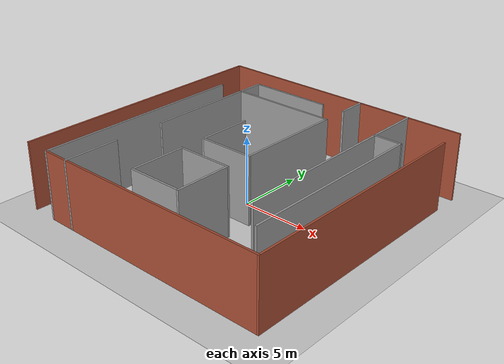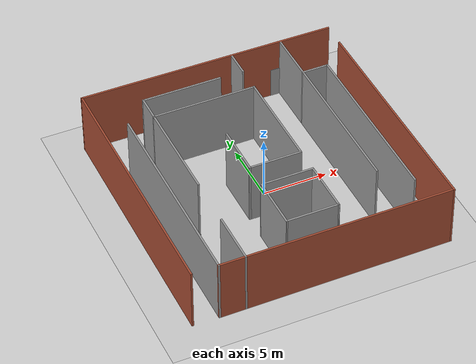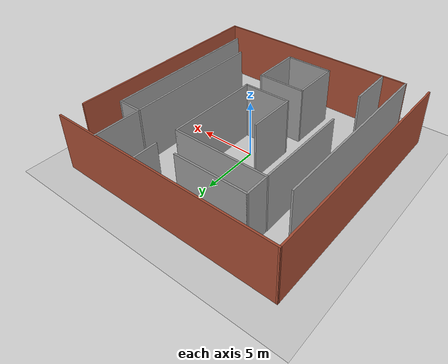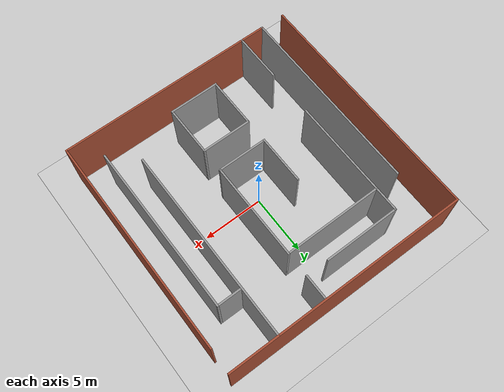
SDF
<sdf version="1.6">
 <world name="default">
  <light name="sun" type="directional">
   <pose>0 0 10 0 -0 0</pose>
   <diffuse>0.8 0.8 0.8 1</diffuse>
   <specular>0.2 0.2 0.2 1</specular>
   <attenuation>
    <range>1000</range>
    <constant>0.9</constant>
    <linear>0.01</linear>
    <quadratic>0.001</quadratic>
   </attenuation>
   <direction>-0.5 0.1 -0.9</direction>
  </light>
  <model name="ground_plane">
   <static>1</static>
   <link name="link">
    <collision name="collision">
     <geometry><plane><normal>0 0 1</normal><size>100 100</size></plane></geometry>
     <surface><friction><ode><mu>100</mu><mu2>50</mu2></ode></friction></surface>
    </collision>
    <visual name="visual">
     <cast_shadows>0</cast_shadows>
     <geometry><plane><normal>0 0 1</normal><size>100 100</size></plane></geometry>
     <material>
      <script><uri>file://media/materials/scripts/gazebo.material</uri><name>Gazebo/Grey</name></script>
     </material>
    </visual>
   </link>
  </model>
  <gravity>0 0 -9.8</gravity>
  <magnetic_field>6e-06 2.3e-05 -4.2e-05</magnetic_field>
  <atmosphere type="adiabatic"/>
  <physics name="default_physics" default="0" type="ode">
   <max_step_size>0.001</max_step_size>
   <real_time_factor>1</real_time_factor>
   <real_time_update_rate>1000</real_time_update_rate>
  </physics>
  <scene><ambient>0.4 0.4 0.4 1</ambient><background>0.7 0.7 0.7 1</background><shadows>1</shadows></scene>
  <spherical_coordinates>
   <surface_model>EARTH_WGS84</surface_model>
   <latitude_deg>0</latitude_deg>
   <longitude_deg>0</longitude_deg>
   <elevation>0</elevation>
   <heading_deg>0</heading_deg>
  </spherical_coordinates>
  <model name="maze_easy">
   <pose>-0.01732 0.00417 0 0 -0 0</pose>
   <link name="Wall_0">
    <collision name="Wall_0_Collision">
     <geometry><box><size>20.1504 0.15 5</size></box></geometry>
     <pose>0 0 2.5 0 -0 0</pose>
    </collision>
    <visual name="Wall_0_Visual">
     <pose>0 0 2.5 0 -0 0</pose>
     <geometry><box><size>20.1504 0.15 5</size></box></geometry>
     <material>
      <script><uri>file://media/materials/scripts/gazebo.material</uri><name>Gazebo/Bricks</name></script>
      <ambient>0.996078 0.47451 0.0196078 1</ambient>
     </material>
     <meta><layer>0</layer></meta>
    </visual>
    <pose>0.008803 9.99977 0 0 -0 -0.00615</pose>
   </link>
   <link name="Wall_11">
    <collision name="Wall_11_Collision">
     <geometry><box><size>16.15 0.15 5</size></box></geometry>
     <pose>0 0 2.5 0 -0 0</pose>
    </collision>
    <visual name="Wall_11_Visual">
     <pose>0 0 2.5 0 -0 0</pose>
     <geometry><box><size>16.15 0.15 5</size></box></geometry>
     <material>
      <script><uri>file://media/materials/scripts/gazebo.material</uri><name>Gazebo/Grey</name></script>
      <ambient>1 1 1 1</ambient>
     </material>
     <meta><layer>0</layer></meta>
    </visual>
    <pose>-8.0092 -2.06173 0 0 -0 1.5708</pose>
   </link>
   <link name="Wall_13">
    <collision name="Wall_13_Collision">
     <geometry><box><size>10.15 0.15 5</size></box></geometry>
     <pose>0 0 2.5 0 -0 0</pose>
    </collision>
    <visual name="Wall_13_Visual">
     <pose>0 0 2.5 0 -0 0</pose>
     <geometry><box><size>10.15 0.15 5</size></box></geometry>
     <material>
      <script><uri>file://media/materials/scripts/gazebo.material</uri><name>Gazebo/Grey</name></script>
      <ambient>1 1 1 1</ambient>
     </material>
     <meta><layer>0</layer></meta>
    </visual>
    <pose>-6.0092 2.93827 0 0 -0 -1.5708</pose>
   </link>
   <link name="Wall_15">
    <collision name="Wall_15_Collision">
     <geometry><box><size>6.27446 0.15 5</size></box></geometry>
     <pose>0 0 2.5 0 -0 0</pose>
    </collision>
    <visual name="Wall_15_Visual">
     <pose>0 0 2.5 0 -0 0</pose>
     <geometry><box><size>6.27446 0.15 5</size></box></geometry>
     <material>
      <script><uri>file://media/materials/scripts/gazebo.material</uri><name>Gazebo/Grey</name></script>
      <ambient>1 1 1 1</ambient>
     </material>
     <meta><layer>0</layer></meta>
    </visual>
    <pose>-2.9472 7.93827 0 0 -0 0</pose>
   </link>
   <link name="Wall_17">
    <collision name="Wall_17_Collision">
     <geometry><box><size>8.15 0.15 5</size></box></geometry>
     <pose>0 0 2.5 0 -0 0</pose>
    </collision>
    <visual name="Wall_17_Visual">
     <pose>0 0 2.5 0 -0 0</pose>
     <geometry><box><size>8.15 0.15 5</size></box></geometry>
     <material>
      <script><uri>file://media/materials/scripts/gazebo.material</uri><name>Gazebo/Grey</name></script>
      <ambient>1 1 1 1</ambient>
     </material>
     <meta><layer>0</layer></meta>
    </visual>
    <pose>-2.0092 5.93827 0 0 -0 0</pose>
   </link>
   <link name="Wall_19">
    <collision name="Wall_19_Collision">
     <geometry><box><size>2.15 0.15 5</size></box></geometry>
     <pose>0 0 2.5 0 -0 0</pose>
    </collision>
    <visual name="Wall_19_Visual">
     <pose>0 0 2.5 0 -0 0</pose>
     <geometry><box><size>2.15 0.15 5</size></box></geometry>
     <material>
      <script><uri>file://media/materials/scripts/gazebo.material</uri><name>Gazebo/Grey</name></script>
      <ambient>1 1 1 1</ambient>
     </material>
     <meta><layer>0</layer></meta>
    </visual>
    <pose>1.9908 8.93827 0 0 -0 -1.5708</pose>
   </link>
   <link name="Wall_2">
    <collision name="Wall_2_Collision">
     <geometry><box><size>20.2115 0.15 5</size></box></geometry>
     <pose>0 0 2.5 0 -0 0</pose>
    </collision>
    <visual name="Wall_2_Visual">
     <pose>0 0 2.5 0 -0 0</pose>
     <geometry><box><size>20.2115 0.15 5</size></box></geometry>
     <material>
      <script><uri>file://media/materials/scripts/gazebo.material</uri><name>Gazebo/Bricks</name></script>
      <ambient>0.921569 0.807843 0.615686 1</ambient>
     </material>
     <meta><layer>0</layer></meta>
    </visual>
    <pose>-10.0002 0.03077 0 0 -0 -1.57169</pose>
   </link>
   <link name="Wall_21">
    <collision name="Wall_21_Collision">
     <geometry><box><size>8.096 0.15 5</size></box></geometry>
     <pose>0 0 2.5 0 -0 0</pose>
    </collision>
    <visual name="Wall_21_Visual">
     <pose>0 0 2.5 0 -0 0</pose>
     <geometry><box><size>8.096 0.15 5</size></box></geometry>
     <material>
      <script><uri>file://media/materials/scripts/gazebo.material</uri><name>Gazebo/Grey</name></script>
      <ambient>1 1 1 1</ambient>
     </material>
     <meta><layer>0</layer></meta>
    </visual>
    <pose>1.9908 1.96527 0 0 -0 -1.5708</pose>
   </link>
   <link name="Wall_22">
    <collision name="Wall_22_Collision">
     <geometry><box><size>4.15 0.15 5</size></box></geometry>
     <pose>0 0 2.5 0 -0 0</pose>
    </collision>
    <visual name="Wall_22_Visual">
     <pose>0 0 2.5 0 -0 0</pose>
     <geometry><box><size>4.15 0.15 5</size></box></geometry>
     <material>
      <script><uri>file://media/materials/scripts/gazebo.material</uri><name>Gazebo/Grey</name></script>
      <ambient>1 1 1 1</ambient>
     </material>
     <meta><layer>0</layer></meta>
    </visual>
    <pose>-0.009197 -2.00773 0 0 -0 3.14159</pose>
   </link>
   <link name="Wall_23">
    <collision name="Wall_23_Collision">
     <geometry><box><size>4.096 0.15 5</size></box></geometry>
     <pose>0 0 2.5 0 -0 0</pose>
    </collision>
    <visual name="Wall_23_Visual">
     <pose>0 0 2.5 0 -0 0</pose>
     <geometry><box><size>4.096 0.15 5</size></box></geometry>
     <material>
      <script><uri>file://media/materials/scripts/gazebo.material</uri><name>Gazebo/Grey</name></script>
      <ambient>1 1 1 1</ambient>
     </material>
     <meta><layer>0</layer></meta>
    </visual>
    <pose>-2.0092 -0.034729 0 0 -0 1.5708</pose>
   </link>
   <link name="Wall_25">
    <collision name="Wall_25_Collision">
     <geometry><box><size>4.258 0.15 5</size></box></geometry>
     <pose>0 0 2.5 0 -0 0</pose>
    </collision>
    <visual name="Wall_25_Visual">
     <pose>0 0 2.5 0 -0 0</pose>
     <geometry><box><size>4.258 0.15 5</size></box></geometry>
     <material>
      <script><uri>file://media/materials/scripts/gazebo.material</uri><name>Gazebo/Grey</name></script>
      <ambient>1 1 1 1</ambient>
     </material>
     <meta><layer>0</layer></meta>
    </visual>
    <pose>-2.0092 -6.00773 0 0 -0 -1.5708</pose>
   </link>
   <link name="Wall_26">
    <collision name="Wall_26_Collision">
     <geometry><box><size>4.15 0.15 5</size></box></geometry>
     <pose>0 0 2.5 0 -0 0</pose>
    </collision>
    <visual name="Wall_26_Visual">
     <pose>0 0 2.5 0 -0 0</pose>
     <geometry><box><size>4.15 0.15 5</size></box></geometry>
     <material>
      <script><uri>file://media/materials/scripts/gazebo.material</uri><name>Gazebo/Grey</name></script>
      <ambient>1 1 1 1</ambient>
     </material>
     <meta><layer>0</layer></meta>
    </visual>
    <pose>-0.009197 -8.06173 0 0 -0 0</pose>
   </link>
   <link name="Wall_27">
    <collision name="Wall_27_Collision">
     <geometry><box><size>4.258 0.15 5</size></box></geometry>
     <pose>0 0 2.5 0 -0 0</pose>
    </collision>
    <visual name="Wall_27_Visual">
     <pose>0 0 2.5 0 -0 0</pose>
     <geometry><box><size>4.258 0.15 5</size></box></geometry>
     <material>
      <script><uri>file://media/materials/scripts/gazebo.material</uri><name>Gazebo/Grey</name></script>
      <ambient>1 1 1 1</ambient>
     </material>
     <meta><layer>0</layer></meta>
    </visual>
    <pose>1.9908 -6.00773 0 0 -0 1.5708</pose>
   </link>
   <link name="Wall_28">
    <collision name="Wall_28_Collision">
     <geometry><box><size>4.15 0.15 5</size></box></geometry>
     <pose>0 0 2.5 0 -0 0</pose>
    </collision>
    <visual name="Wall_28_Visual">
     <pose>0 0 2.5 0 -0 0</pose>
     <geometry><box><size>4.15 0.15 5</size></box></geometry>
     <material>
      <script><uri>file://media/materials/scripts/gazebo.material</uri><name>Gazebo/Grey</name></script>
      <ambient>1 1 1 1</ambient>
     </material>
     <meta><layer>0</layer></meta>
    </visual>
    <pose>-0.009197 -3.95373 0 0 -0 3.14159</pose>
   </link>
   <link name="Wall_30">
    <collision name="Wall_30_Collision">
     <geometry><box><size>4.15 0.15 5</size></box></geometry>
     <pose>0 0 2.5 0 -0 0</pose>
    </collision>
    <visual name="Wall_30_Visual">
     <pose>0 0 2.5 0 -0 0</pose>
     <geometry><box><size>4.15 0.15 5</size></box></geometry>
     <material>
      <script><uri>file://media/materials/scripts/gazebo.material</uri><name>Gazebo/Grey</name></script>
      <ambient>1 1 1 1</ambient>
     </material>
     <meta><layer>0</layer></meta>
    </visual>
    <pose>-6.0092 -8.06173 0 0 -0 -1.5708</pose>
   </link>
   <link name="Wall_32">
    <collision name="Wall_32_Collision">
     <geometry><box><size>0.871045 0.15 2.5</size></box></geometry>
     <pose>0 0 1.25 0 -0 0</pose>
    </collision>
    <visual name="Wall_32_Visual">
     <pose>0 0 1.25 0 -0 0</pose>
     <geometry><box><size>0.871045 0.15 2.5</size></box></geometry>
     <material>
      <script><uri>file://media/materials/scripts/gazebo.material</uri><name>Gazebo/Grey</name></script>
      <ambient>1 1 1 1</ambient>
     </material>
     <meta><layer>0</layer></meta>
    </visual>
    <pose>5.63033 9.94442 0 0 -0 -0.01707</pose>
   </link>
   <link name="Wall_33">
    <collision name="Wall_33_Collision">
     <geometry><box><size>16.15 0.15 5</size></box></geometry>
     <pose>0 0 2.5 0 -0 0</pose>
    </collision>
    <visual name="Wall_33_Visual">
     <pose>0 0 2.5 0 -0 0</pose>
     <geometry><box><size>16.15 0.15 5</size></box></geometry>
     <material>
      <script><uri>file://media/materials/scripts/gazebo.material</uri><name>Gazebo/Grey</name></script>
      <ambient>1 1 1 1</ambient>
     </material>
     <meta><layer>0</layer></meta>
    </visual>
    <pose>5.9908 1.93827 0 0 -0 -1.5708</pose>
   </link>
   <link name="Wall_36">
    <collision name="Wall_36_Collision">
     <geometry><box><size>14.096 0.15 5</size></box></geometry>
     <pose>0 0 2.5 0 -0 0</pose>
    </collision>
    <visual name="Wall_36_Visual">
     <pose>0 0 2.5 0 -0 0</pose>
     <geometry><box><size>14.096 0.15 5</size></box></geometry>
     <material>
      <script><uri>file://media/materials/scripts/gazebo.material</uri><name>Gazebo/Grey</name></script>
      <ambient>1 1 1 1</ambient>
     </material>
     <meta><layer>0</layer></meta>
    </visual>
    <pose>7.9908 -1.03473 0 0 -0 1.5708</pose>
   </link>
   <link name="Wall_37">
    <collision name="Wall_37_Collision">
     <geometry><box><size>2.15 0.15 5</size></box></geometry>
     <pose>0 0 2.5 0 -0 0</pose>
    </collision>
    <visual name="Wall_37_Visual">
     <pose>0 0 2.5 0 -0 0</pose>
     <geometry><box><size>2.15 0.15 5</size></box></geometry>
     <material>
      <script><uri>file://media/materials/scripts/gazebo.material</uri><name>Gazebo/Grey</name></script>
      <ambient>1 1 1 1</ambient>
     </material>
     <meta><layer>0</layer></meta>
    </visual>
    <pose>6.9908 5.93827 0 0 -0 3.14159</pose>
   </link>
   <link name="Wall_7">
    <collision name="Wall_7_Collision">
     <geometry><box><size>18.15 0.15 5</size></box></geometry>
     <pose>0 0 2.5 0 -0 0</pose>
    </collision>
    <visual name="Wall_7_Visual">
     <pose>0 0 2.5 0 -0 0</pose>
     <geometry><box><size>18.15 0.15 5</size></box></geometry>
     <material>
      <script><uri>file://media/materials/scripts/gazebo.material</uri><name>Gazebo/Bricks</name></script>
      <ambient>0.921569 0.807843 0.615686 1</ambient>
     </material>
     <meta><layer>0</layer></meta>
    </visual>
    <pose>0.990803 -10.0617 0 0 -0 0</pose>
   </link>
   <link name="Wall_9">
    <collision name="Wall_9_Collision">
     <geometry><box><size>18.15 0.15 5</size></box></geometry>
     <pose>0 0 2.5 0 -0 0</pose>
    </collision>
    <visual name="Wall_9_Visual">
     <pose>0 0 2.5 0 -0 0</pose>
     <geometry><box><size>18.15 0.15 5</size></box></geometry>
     <material>
      <script><uri>file://media/materials/scripts/gazebo.material</uri><name>Gazebo/Bricks</name></script>
      <ambient>0.921569 0.807843 0.615686 1</ambient>
     </material>
     <meta><layer>0</layer></meta>
    </visual>
    <pose>9.9908 -1.06173 0 0 -0 1.5708</pose>
   </link>
   <static>1</static>
  </model>
 </world>
</sdf>
